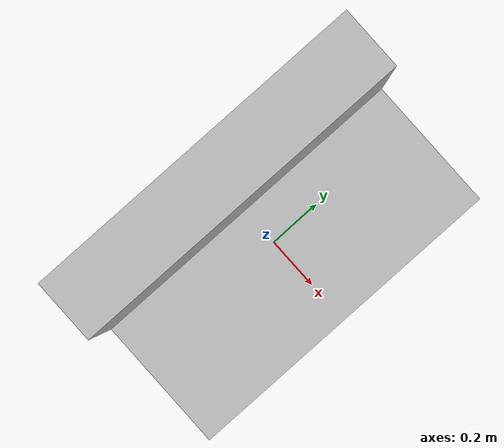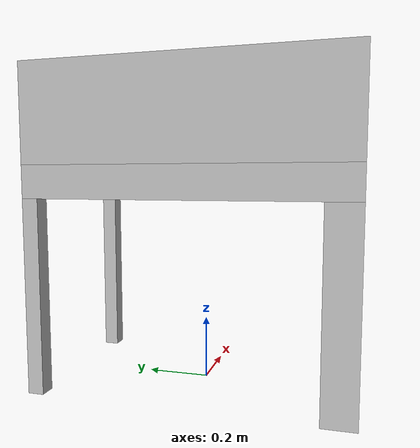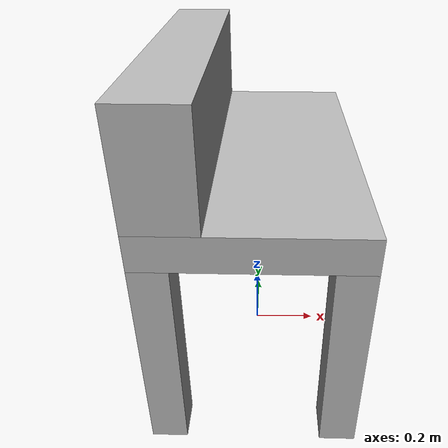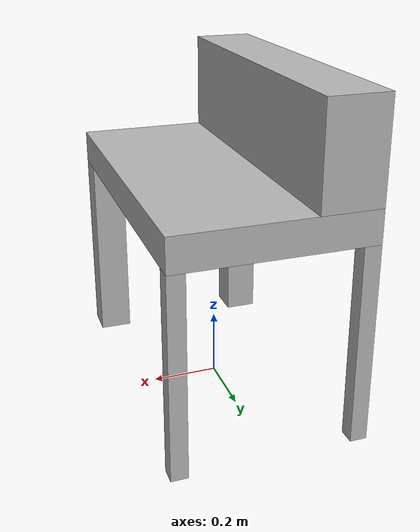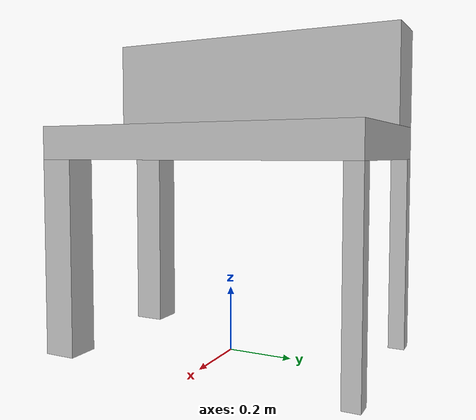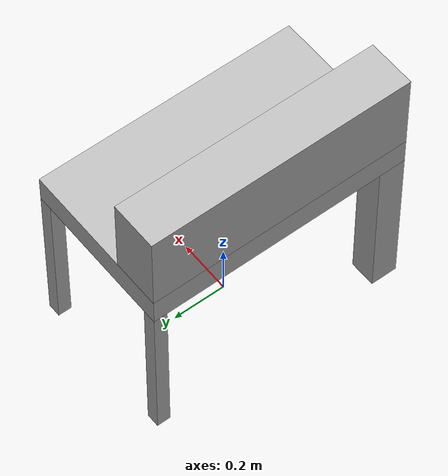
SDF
<?xml version="1.0"?>
<sdf version="1.6">
  <model name="rwc2017/desk_little">
    <link name="1_link">
      <collision name="1_col">
        <geometry>
          <box>
            <size>0.58 0.98 0.1</size>
          </box>
        </geometry>
      </collision>
      <visual name="1_vis">
        <geometry>
          <box>
            <size>0.58 0.98 0.1</size>
          </box>
        </geometry>
      </visual>
      <pose>0 0 0.65 0 0 0</pose>
    </link>
    <link name="2_link">
      <collision name="2_col">
        <geometry>
          <box>
            <size>0.18 0.98 0.3</size>
          </box>
        </geometry>
      </collision>
      <visual name="2_vis">
        <geometry>
          <box>
            <size>0.18 0.98 0.3</size>
          </box>
        </geometry>
      </visual>
      <pose>-0.2 0 0.85 0 0 0</pose>
    </link>
    <link name="3_link">
      <collision name="3_col">
        <geometry>
          <box>
            <size>0.1 0.1 0.6</size>
          </box>
        </geometry>
      </collision>
      <visual name="3_vis">
        <geometry>
          <box>
            <size>0.1 0.1 0.6</size>
          </box>
        </geometry>
      </visual>
      <pose>-0.24 -0.44 0.3 0 0 0</pose>
    </link>
    <link name="4_link">
      <collision name="4_col">
        <geometry>
          <box>
            <size>0.1 0.1 0.6</size>
          </box>
        </geometry>
      </collision>
      <visual name="4_vis">
        <geometry>
          <box>
            <size>0.1 0.1 0.6</size>
          </box>
        </geometry>
      </visual>
      <pose>0.24 -0.44 0.3 0 0 0</pose>
    </link>
    <link name="5_link">
      <collision name="5_col">
        <geometry>
          <box>
            <size>0.05 0.05 0.6</size>
          </box>
        </geometry>
      </collision>
      <visual name="5_vis">
        <geometry>
          <box>
            <size>0.05 0.05 0.6</size>
          </box>
        </geometry>
      </visual>
      <pose>-0.265 0.465 0.3 0 0 0</pose>
    </link>
    <link name="6_link">
      <collision name="6_col">
        <geometry>
          <box>
            <size>0.05 0.05 0.6</size>
          </box>
        </geometry>
      </collision>
      <visual name="6_vis">
        <geometry>
          <box>
            <size>0.05 0.05 0.6</size>
          </box>
        </geometry>
      </visual>
      <pose>0.265 0.465 0.3 0 0 0</pose>
    </link>
    <link name="on_top_of">
      <virtual_volume name="on_top_of_vv">
        <geometry>
          <box>
            <size>0.34 0.92 0.25</size>
          </box>
        </geometry>
        <pose>0.09 0.0 0.845 0 0 0</pose>
      </virtual_volume>
    </link>
    <link name="in_front_of">
      <virtual_volume name="in_front_of_vv">
        <geometry>
          <box>
            <size>0.2 0.78 0.01</size>
          </box>
        </geometry>
        <pose>0.79 0.0 0.005 0 0 0</pose>
      </virtual_volume>
    </link>
    <static>true</static>
  </model>
</sdf>
